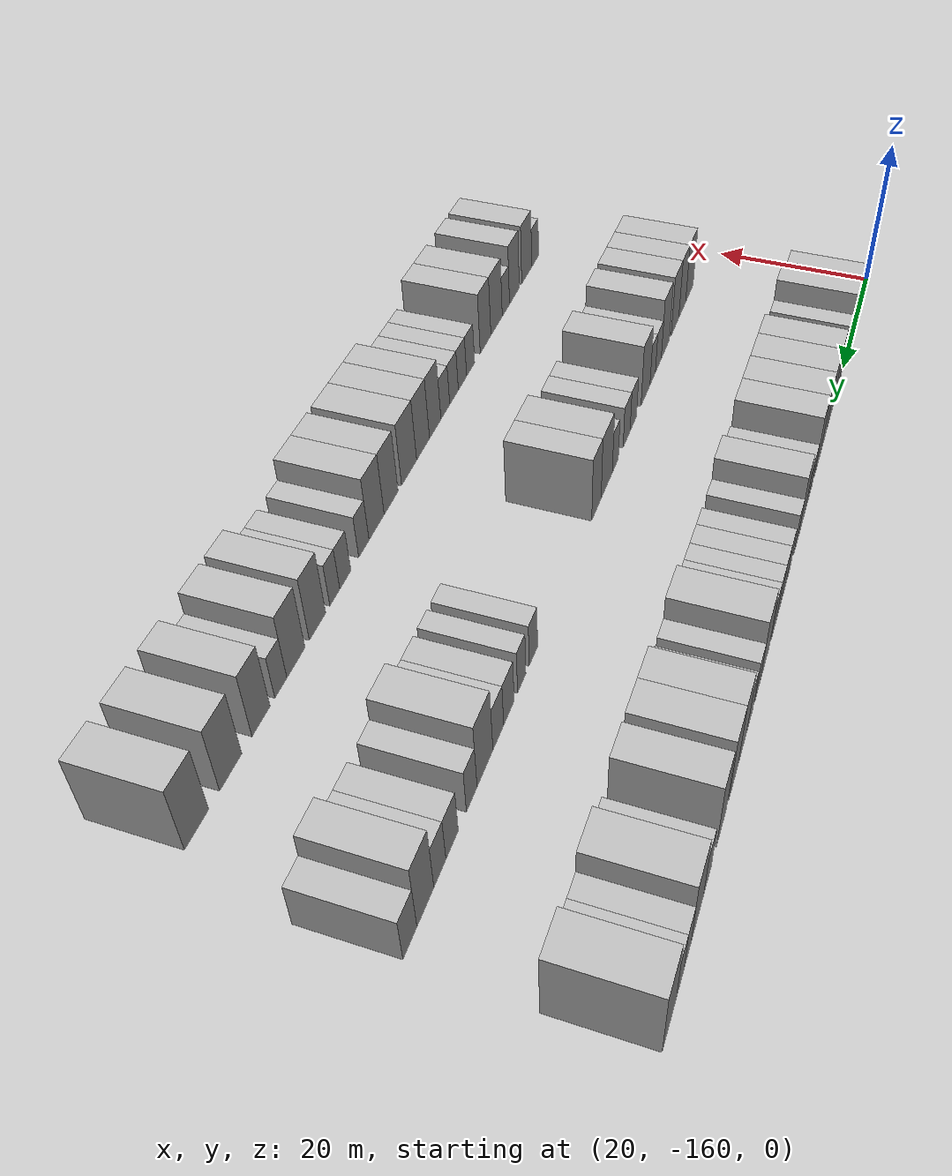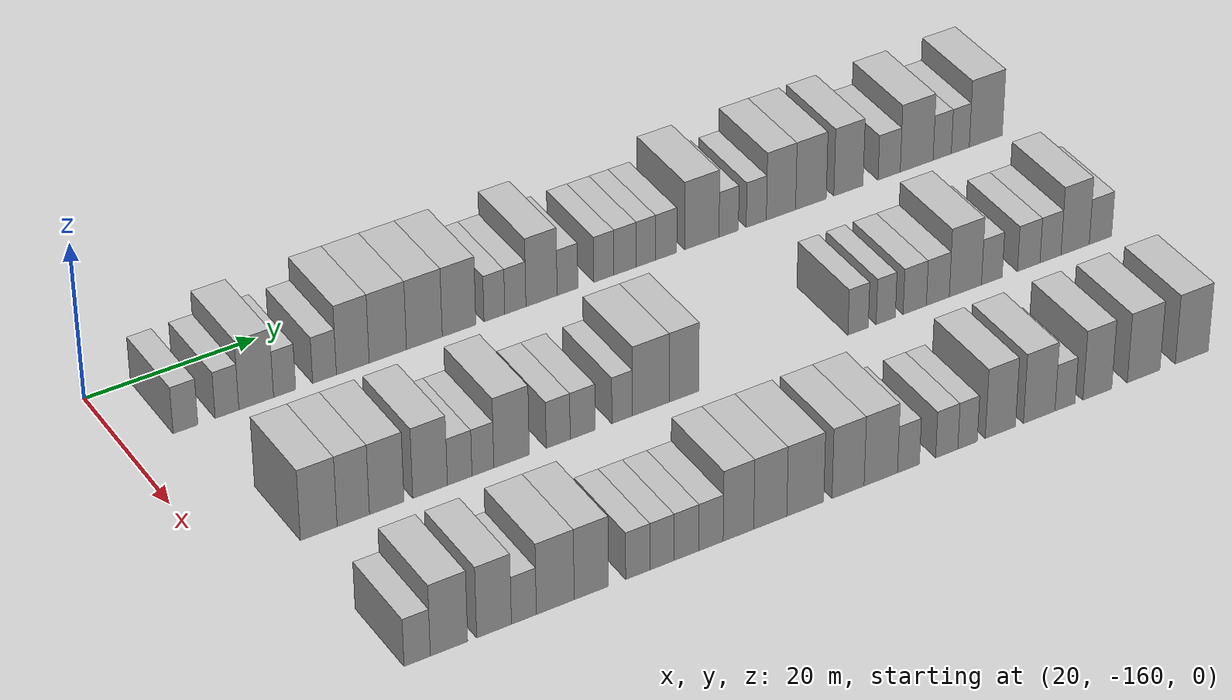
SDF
<sdf version="1.6">
 <world name="default">
  <model name="building_26">
   <static>1</static>
   <pose>25.0000 -153.2342 0 0.000000 0.000000 0.000000</pose>
   <link name="link">
    <pose>0 0 3.00 0 0 0</pose>
    <collision name="collision"><geometry><box><size>10.0000 2.8501 6.0000</size></box></geometry></collision>
    <visual name="visual">
     <cast_shadows>0</cast_shadows>
     <geometry><box><size>10.0000 2.8501 6.0000</size></box></geometry>
     <material>
      <script>
       <uri>model://HANNAS_wall/materials/scripts</uri>
       <uri>model://HANNAS_wall/materials/textures</uri>
       <name>vrc/HANNAS_wall</name>
      </script>
     </material>
    </visual>
   </link>
  </model>
  <model name="building_27">
   <static>1</static>
   <pose>25.0000 -148.4355 0 0.000000 0.000000 0.000000</pose>
   <link name="link">
    <pose>0 0 3.00 0 0 0</pose>
    <collision name="collision"><geometry><box><size>10.0000 2.7472 6.0000</size></box></geometry></collision>
    <visual name="visual">
     <cast_shadows>0</cast_shadows>
     <geometry><box><size>10.0000 2.7472 6.0000</size></box></geometry>
     <material>
      <script>
       <uri>model://HANNAS_wall/materials/scripts</uri>
       <uri>model://HANNAS_wall/materials/textures</uri>
       <name>vrc/HANNAS_wall</name>
      </script>
     </material>
    </visual>
   </link>
  </model>
  <model name="building_28">
   <static>1</static>
   <pose>25.0000 -145.0382 0 0.000000 0.000000 0.000000</pose>
   <link name="link">
    <pose>0 0 4.50 0 0 0</pose>
    <collision name="collision"><geometry><box><size>10.0000 4.0474 9.0000</size></box></geometry></collision>
    <visual name="visual">
     <cast_shadows>0</cast_shadows>
     <geometry><box><size>10.0000 4.0474 9.0000</size></box></geometry>
     <material>
      <script>
       <uri>model://HANNAS_wall/materials/scripts</uri>
       <uri>model://HANNAS_wall/materials/textures</uri>
       <name>vrc/HANNAS_wall</name>
      </script>
     </material>
    </visual>
   </link>
  </model>
  <model name="building_29">
   <static>1</static>
   <pose>25.0000 -141.7156 0 0.000000 0.000000 0.000000</pose>
   <link name="link">
    <pose>0 0 3.00 0 0 0</pose>
    <collision name="collision"><geometry><box><size>10.0000 2.5978 6.0000</size></box></geometry></collision>
    <visual name="visual">
     <cast_shadows>0</cast_shadows>
     <geometry><box><size>10.0000 2.5978 6.0000</size></box></geometry>
     <material>
      <script>
       <uri>model://HANNAS_wall/materials/scripts</uri>
       <uri>model://HANNAS_wall/materials/textures</uri>
       <name>vrc/HANNAS_wall</name>
      </script>
     </material>
    </visual>
   </link>
  </model>
  <model name="building_30">
   <static>1</static>
   <pose>25.0000 -137.0139 0 0.000000 0.000000 0.000000</pose>
   <link name="link">
    <pose>0 0 3.00 0 0 0</pose>
    <collision name="collision"><geometry><box><size>10.0000 2.8056 6.0000</size></box></geometry></collision>
    <visual name="visual">
     <cast_shadows>0</cast_shadows>
     <geometry><box><size>10.0000 2.8056 6.0000</size></box></geometry>
     <material>
      <script>
       <uri>model://HANNAS_wall/materials/scripts</uri>
       <uri>model://HANNAS_wall/materials/textures</uri>
       <name>vrc/HANNAS_wall</name>
      </script>
     </material>
    </visual>
   </link>
  </model>
  <model name="building_31">
   <static>1</static>
   <pose>25.0000 -133.6611 0 0.000000 0.000000 0.000000</pose>
   <link name="link">
    <pose>0 0 4.50 0 0 0</pose>
    <collision name="collision"><geometry><box><size>10.0000 3.8999 9.0000</size></box></geometry></collision>
    <visual name="visual">
     <cast_shadows>0</cast_shadows>
     <geometry><box><size>10.0000 3.8999 9.0000</size></box></geometry>
     <material>
      <script>
       <uri>model://HANNAS_wall/materials/scripts</uri>
       <uri>model://HANNAS_wall/materials/textures</uri>
       <name>vrc/HANNAS_wall</name>
      </script>
     </material>
    </visual>
   </link>
  </model>
  <model name="building_32">
   <static>1</static>
   <pose>25.0000 -129.4743 0 0.000000 0.000000 0.000000</pose>
   <link name="link">
    <pose>0 0 4.50 0 0 0</pose>
    <collision name="collision"><geometry><box><size>10.0000 4.4739 9.0000</size></box></geometry></collision>
    <visual name="visual">
     <cast_shadows>0</cast_shadows>
     <geometry><box><size>10.0000 4.4739 9.0000</size></box></geometry>
     <material>
      <script>
       <uri>model://HANNAS_wall/materials/scripts</uri>
       <uri>model://HANNAS_wall/materials/textures</uri>
       <name>vrc/HANNAS_wall</name>
      </script>
     </material>
    </visual>
   </link>
  </model>
  <model name="building_33">
   <static>1</static>
   <pose>25.0000 -125.0776 0 0.000000 0.000000 0.000000</pose>
   <link name="link">
    <pose>0 0 4.50 0 0 0</pose>
    <collision name="collision"><geometry><box><size>10.0000 4.3195 9.0000</size></box></geometry></collision>
    <visual name="visual">
     <cast_shadows>0</cast_shadows>
     <geometry><box><size>10.0000 4.3195 9.0000</size></box></geometry>
     <material>
      <script>
       <uri>model://HANNAS_wall/materials/scripts</uri>
       <uri>model://HANNAS_wall/materials/textures</uri>
       <name>vrc/HANNAS_wall</name>
      </script>
     </material>
    </visual>
   </link>
  </model>
  <model name="building_34">
   <static>1</static>
   <pose>25.0000 -120.8792 0 0.000000 0.000000 0.000000</pose>
   <link name="link">
    <pose>0 0 4.50 0 0 0</pose>
    <collision name="collision"><geometry><box><size>10.0000 4.0772 9.0000</size></box></geometry></collision>
    <visual name="visual">
     <cast_shadows>0</cast_shadows>
     <geometry><box><size>10.0000 4.0772 9.0000</size></box></geometry>
     <material>
      <script>
       <uri>model://HANNAS_wall/materials/scripts</uri>
       <uri>model://HANNAS_wall/materials/textures</uri>
       <name>vrc/HANNAS_wall</name>
      </script>
     </material>
    </visual>
   </link>
  </model>
  <model name="building_35">
   <static>1</static>
   <pose>25.0000 -116.5650 0 0.000000 0.000000 0.000000</pose>
   <link name="link">
    <pose>0 0 3.00 0 0 0</pose>
    <collision name="collision"><geometry><box><size>10.0000 2.5513 6.0000</size></box></geometry></collision>
    <visual name="visual">
     <cast_shadows>0</cast_shadows>
     <geometry><box><size>10.0000 2.5513 6.0000</size></box></geometry>
     <material>
      <script>
       <uri>model://HANNAS_wall/materials/scripts</uri>
       <uri>model://HANNAS_wall/materials/textures</uri>
       <name>vrc/HANNAS_wall</name>
      </script>
     </material>
    </visual>
   </link>
  </model>
  <model name="building_36">
   <static>1</static>
   <pose>25.0000 -113.9904 0 0.000000 0.000000 0.000000</pose>
   <link name="link">
    <pose>0 0 3.00 0 0 0</pose>
    <collision name="collision"><geometry><box><size>10.0000 2.5978 6.0000</size></box></geometry></collision>
    <visual name="visual">
     <cast_shadows>0</cast_shadows>
     <geometry><box><size>10.0000 2.5978 6.0000</size></box></geometry>
     <material>
      <script>
       <uri>model://HANNAS_wall/materials/scripts</uri>
       <uri>model://HANNAS_wall/materials/textures</uri>
       <name>vrc/HANNAS_wall</name>
      </script>
     </material>
    </visual>
   </link>
  </model>
  <model name="building_37">
   <static>1</static>
   <pose>25.0000 -110.7611 0 0.000000 0.000000 0.000000</pose>
   <link name="link">
    <pose>0 0 4.50 0 0 0</pose>
    <collision name="collision"><geometry><box><size>10.0000 3.8607 9.0000</size></box></geometry></collision>
    <visual name="visual">
     <cast_shadows>0</cast_shadows>
     <geometry><box><size>10.0000 3.8607 9.0000</size></box></geometry>
     <material>
      <script>
       <uri>model://HANNAS_wall/materials/scripts</uri>
       <uri>model://HANNAS_wall/materials/textures</uri>
       <name>vrc/HANNAS_wall</name>
      </script>
     </material>
    </visual>
   </link>
  </model>
  <model name="building_38">
   <static>1</static>
   <pose>25.0000 -107.5421 0 0.000000 0.000000 0.000000</pose>
   <link name="link">
    <pose>0 0 3.00 0 0 0</pose>
    <collision name="collision"><geometry><box><size>10.0000 2.5774 6.0000</size></box></geometry></collision>
    <visual name="visual">
     <cast_shadows>0</cast_shadows>
     <geometry><box><size>10.0000 2.5774 6.0000</size></box></geometry>
     <material>
      <script>
       <uri>model://HANNAS_wall/materials/scripts</uri>
       <uri>model://HANNAS_wall/materials/textures</uri>
       <name>vrc/HANNAS_wall</name>
      </script>
     </material>
    </visual>
   </link>
  </model>
  <model name="building_39">
   <static>1</static>
   <pose>25.0000 -102.9907 0 0.000000 0.000000 0.000000</pose>
   <link name="link">
    <pose>0 0 3.00 0 0 0</pose>
    <collision name="collision"><geometry><box><size>10.0000 2.5255 6.0000</size></box></geometry></collision>
    <visual name="visual">
     <cast_shadows>0</cast_shadows>
     <geometry><box><size>10.0000 2.5255 6.0000</size></box></geometry>
     <material>
      <script>
       <uri>model://HANNAS_wall/materials/scripts</uri>
       <uri>model://HANNAS_wall/materials/textures</uri>
       <name>vrc/HANNAS_wall</name>
      </script>
     </material>
    </visual>
   </link>
  </model>
  <model name="building_40">
   <static>1</static>
   <pose>25.0000 -100.3243 0 0.000000 0.000000 0.000000</pose>
   <link name="link">
    <pose>0 0 3.00 0 0 0</pose>
    <collision name="collision"><geometry><box><size>10.0000 2.8073 6.0000</size></box></geometry></collision>
    <visual name="visual">
     <cast_shadows>0</cast_shadows>
     <geometry><box><size>10.0000 2.8073 6.0000</size></box></geometry>
     <material>
      <script>
       <uri>model://HANNAS_wall/materials/scripts</uri>
       <uri>model://HANNAS_wall/materials/textures</uri>
       <name>vrc/HANNAS_wall</name>
      </script>
     </material>
    </visual>
   </link>
  </model>
  <model name="building_41">
   <static>1</static>
   <pose>25.0000 -97.7084 0 0.000000 0.000000 0.000000</pose>
   <link name="link">
    <pose>0 0 3.00 0 0 0</pose>
    <collision name="collision"><geometry><box><size>10.0000 2.4245 6.0000</size></box></geometry></collision>
    <visual name="visual">
     <cast_shadows>0</cast_shadows>
     <geometry><box><size>10.0000 2.4245 6.0000</size></box></geometry>
     <material>
      <script>
       <uri>model://HANNAS_wall/materials/scripts</uri>
       <uri>model://HANNAS_wall/materials/textures</uri>
       <name>vrc/HANNAS_wall</name>
      </script>
     </material>
    </visual>
   </link>
  </model>
  <model name="building_42">
   <static>1</static>
   <pose>25.0000 -95.1471 0 0.000000 0.000000 0.000000</pose>
   <link name="link">
    <pose>0 0 3.00 0 0 0</pose>
    <collision name="collision"><geometry><box><size>10.0000 2.6981 6.0000</size></box></geometry></collision>
    <visual name="visual">
     <cast_shadows>0</cast_shadows>
     <geometry><box><size>10.0000 2.6981 6.0000</size></box></geometry>
     <material>
      <script>
       <uri>model://HANNAS_wall/materials/scripts</uri>
       <uri>model://HANNAS_wall/materials/textures</uri>
       <name>vrc/HANNAS_wall</name>
      </script>
     </material>
    </visual>
   </link>
  </model>
  <model name="building_43">
   <static>1</static>
   <pose>25.0000 -90.5952 0 0.000000 0.000000 0.000000</pose>
   <link name="link">
    <pose>0 0 4.50 0 0 0</pose>
    <collision name="collision"><geometry><box><size>10.0000 4.4057 9.0000</size></box></geometry></collision>
    <visual name="visual">
     <cast_shadows>0</cast_shadows>
     <geometry><box><size>10.0000 4.4057 9.0000</size></box></geometry>
     <material>
      <script>
       <uri>model://HANNAS_wall/materials/scripts</uri>
       <uri>model://HANNAS_wall/materials/textures</uri>
       <name>vrc/HANNAS_wall</name>
      </script>
     </material>
    </visual>
   </link>
  </model>
  <model name="building_44">
   <static>1</static>
   <pose>25.0000 -87.1401 0 0.000000 0.000000 0.000000</pose>
   <link name="link">
    <pose>0 0 3.00 0 0 0</pose>
    <collision name="collision"><geometry><box><size>10.0000 2.5045 6.0000</size></box></geometry></collision>
    <visual name="visual">
     <cast_shadows>0</cast_shadows>
     <geometry><box><size>10.0000 2.5045 6.0000</size></box></geometry>
     <material>
      <script>
       <uri>model://HANNAS_wall/materials/scripts</uri>
       <uri>model://HANNAS_wall/materials/textures</uri>
       <name>vrc/HANNAS_wall</name>
      </script>
     </material>
    </visual>
   </link>
  </model>
  <model name="building_45">
   <static>1</static>
   <pose>25.0000 -83.5839 0 0.000000 0.000000 0.000000</pose>
   <link name="link">
    <pose>0 0 3.00 0 0 0</pose>
    <collision name="collision"><geometry><box><size>10.0000 2.6078 6.0000</size></box></geometry></collision>
    <visual name="visual">
     <cast_shadows>0</cast_shadows>
     <geometry><box><size>10.0000 2.6078 6.0000</size></box></geometry>
     <material>
      <script>
       <uri>model://HANNAS_wall/materials/scripts</uri>
       <uri>model://HANNAS_wall/materials/textures</uri>
       <name>vrc/HANNAS_wall</name>
      </script>
     </material>
    </visual>
   </link>
  </model>
  <model name="building_46">
   <static>1</static>
   <pose>25.0000 -80.3772 0 0.000000 0.000000 0.000000</pose>
   <link name="link">
    <pose>0 0 4.50 0 0 0</pose>
    <collision name="collision"><geometry><box><size>10.0000 3.8057 9.0000</size></box></geometry></collision>
    <visual name="visual">
     <cast_shadows>0</cast_shadows>
     <geometry><box><size>10.0000 3.8057 9.0000</size></box></geometry>
     <material>
      <script>
       <uri>model://HANNAS_wall/materials/scripts</uri>
       <uri>model://HANNAS_wall/materials/textures</uri>
       <name>vrc/HANNAS_wall</name>
      </script>
     </material>
    </visual>
   </link>
  </model>
  <model name="building_47">
   <static>1</static>
   <pose>25.0000 -76.4669 0 0.000000 0.000000 0.000000</pose>
   <link name="link">
    <pose>0 0 4.50 0 0 0</pose>
    <collision name="collision"><geometry><box><size>10.0000 4.0148 9.0000</size></box></geometry></collision>
    <visual name="visual">
     <cast_shadows>0</cast_shadows>
     <geometry><box><size>10.0000 4.0148 9.0000</size></box></geometry>
     <material>
      <script>
       <uri>model://HANNAS_wall/materials/scripts</uri>
       <uri>model://HANNAS_wall/materials/textures</uri>
       <name>vrc/HANNAS_wall</name>
      </script>
     </material>
    </visual>
   </link>
  </model>
  <model name="building_48">
   <static>1</static>
   <pose>25.0000 -71.5309 0 0.000000 0.000000 0.000000</pose>
   <link name="link">
    <pose>0 0 4.50 0 0 0</pose>
    <collision name="collision"><geometry><box><size>10.0000 3.8572 9.0000</size></box></geometry></collision>
    <visual name="visual">
     <cast_shadows>0</cast_shadows>
     <geometry><box><size>10.0000 3.8572 9.0000</size></box></geometry>
     <material>
      <script>
       <uri>model://HANNAS_wall/materials/scripts</uri>
       <uri>model://HANNAS_wall/materials/textures</uri>
       <name>vrc/HANNAS_wall</name>
      </script>
     </material>
    </visual>
   </link>
  </model>
  <model name="building_49">
   <static>1</static>
   <pose>25.0000 -66.1277 0 0.000000 0.000000 0.000000</pose>
   <link name="link">
    <pose>0 0 3.00 0 0 0</pose>
    <collision name="collision"><geometry><box><size>10.0000 2.9492 6.0000</size></box></geometry></collision>
    <visual name="visual">
     <cast_shadows>0</cast_shadows>
     <geometry><box><size>10.0000 2.9492 6.0000</size></box></geometry>
     <material>
      <script>
       <uri>model://HANNAS_wall/materials/scripts</uri>
       <uri>model://HANNAS_wall/materials/textures</uri>
       <name>vrc/HANNAS_wall</name>
      </script>
     </material>
    </visual>
   </link>
  </model>
  <model name="building_50">
   <static>1</static>
   <pose>25.0000 -62.4481 0 0.000000 0.000000 0.000000</pose>
   <link name="link">
    <pose>0 0 4.50 0 0 0</pose>
    <collision name="collision"><geometry><box><size>10.0000 4.4099 9.0000</size></box></geometry></collision>
    <visual name="visual">
     <cast_shadows>0</cast_shadows>
     <geometry><box><size>10.0000 4.4099 9.0000</size></box></geometry>
     <material>
      <script>
       <uri>model://HANNAS_wall/materials/scripts</uri>
       <uri>model://HANNAS_wall/materials/textures</uri>
       <name>vrc/HANNAS_wall</name>
      </script>
     </material>
    </visual>
   </link>
  </model>
  <model name="building_51">
   <static>1</static>
   <pose>25.0000 -59.0148 0 0.000000 0.000000 0.000000</pose>
   <link name="link">
    <pose>0 0 3.00 0 0 0</pose>
    <collision name="collision"><geometry><box><size>10.0000 2.4567 6.0000</size></box></geometry></collision>
    <visual name="visual">
     <cast_shadows>0</cast_shadows>
     <geometry><box><size>10.0000 2.4567 6.0000</size></box></geometry>
     <material>
      <script>
       <uri>model://HANNAS_wall/materials/scripts</uri>
       <uri>model://HANNAS_wall/materials/textures</uri>
       <name>vrc/HANNAS_wall</name>
      </script>
     </material>
    </visual>
   </link>
  </model>
  <model name="building_52">
   <static>1</static>
   <pose>25.0000 -56.5698 0 0.000000 0.000000 0.000000</pose>
   <link name="link">
    <pose>0 0 3.00 0 0 0</pose>
    <collision name="collision"><geometry><box><size>10.0000 2.4333 6.0000</size></box></geometry></collision>
    <visual name="visual">
     <cast_shadows>0</cast_shadows>
     <geometry><box><size>10.0000 2.4333 6.0000</size></box></geometry>
     <material>
      <script>
       <uri>model://HANNAS_wall/materials/scripts</uri>
       <uri>model://HANNAS_wall/materials/textures</uri>
       <name>vrc/HANNAS_wall</name>
      </script>
     </material>
    </visual>
   </link>
  </model>
  <model name="building_53">
   <static>1</static>
   <pose>25.0000 -53.1137 0 0.000000 0.000000 0.000000</pose>
   <link name="link">
    <pose>0 0 4.50 0 0 0</pose>
    <collision name="collision"><geometry><box><size>10.0000 4.4789 9.0000</size></box></geometry></collision>
    <visual name="visual">
     <cast_shadows>0</cast_shadows>
     <geometry><box><size>10.0000 4.4789 9.0000</size></box></geometry>
     <material>
      <script>
       <uri>model://HANNAS_wall/materials/scripts</uri>
       <uri>model://HANNAS_wall/materials/textures</uri>
       <name>vrc/HANNAS_wall</name>
      </script>
     </material>
    </visual>
   </link>
  </model>
  <model name="building_149">
   <static>1</static>
   <pose>47.0000 -149.3163 0 0.000000 0.000000 0.000000</pose>
   <link name="link">
    <pose>0 0 4.50 0 0 0</pose>
    <collision name="collision"><geometry><box><size>10.0000 4.1596 9.0000</size></box></geometry></collision>
    <visual name="visual">
     <cast_shadows>0</cast_shadows>
     <geometry><box><size>10.0000 4.1596 9.0000</size></box></geometry>
     <material>
      <script>
       <uri>model://HANNAS_wall/materials/scripts</uri>
       <uri>model://HANNAS_wall/materials/textures</uri>
       <name>vrc/HANNAS_wall</name>
      </script>
     </material>
    </visual>
   </link>
  </model>
  <model name="building_150">
   <static>1</static>
   <pose>47.0000 -145.3933 0 0.000000 0.000000 0.000000</pose>
   <link name="link">
    <pose>0 0 4.50 0 0 0</pose>
    <collision name="collision"><geometry><box><size>10.0000 3.6864 9.0000</size></box></geometry></collision>
    <visual name="visual">
     <cast_shadows>0</cast_shadows>
     <geometry><box><size>10.0000 3.6864 9.0000</size></box></geometry>
     <material>
      <script>
       <uri>model://HANNAS_wall/materials/scripts</uri>
       <uri>model://HANNAS_wall/materials/textures</uri>
       <name>vrc/HANNAS_wall</name>
      </script>
     </material>
    </visual>
   </link>
  </model>
  <model name="building_151">
   <static>1</static>
   <pose>47.0000 -141.5632 0 0.000000 0.000000 0.000000</pose>
   <link name="link">
    <pose>0 0 4.50 0 0 0</pose>
    <collision name="collision"><geometry><box><size>10.0000 3.9739 9.0000</size></box></geometry></collision>
    <visual name="visual">
     <cast_shadows>0</cast_shadows>
     <geometry><box><size>10.0000 3.9739 9.0000</size></box></geometry>
     <material>
      <script>
       <uri>model://HANNAS_wall/materials/scripts</uri>
       <uri>model://HANNAS_wall/materials/textures</uri>
       <name>vrc/HANNAS_wall</name>
      </script>
     </material>
    </visual>
   </link>
  </model>
  <model name="building_152">
   <static>1</static>
   <pose>47.0000 -136.5669 0 0.000000 0.000000 0.000000</pose>
   <link name="link">
    <pose>0 0 4.50 0 0 0</pose>
    <collision name="collision"><geometry><box><size>10.0000 4.0186 9.0000</size></box></geometry></collision>
    <visual name="visual">
     <cast_shadows>0</cast_shadows>
     <geometry><box><size>10.0000 4.0186 9.0000</size></box></geometry>
     <material>
      <script>
       <uri>model://HANNAS_wall/materials/scripts</uri>
       <uri>model://HANNAS_wall/materials/textures</uri>
       <name>vrc/HANNAS_wall</name>
      </script>
     </material>
    </visual>
   </link>
  </model>
  <model name="building_153">
   <static>1</static>
   <pose>47.0000 -133.1243 0 0.000000 0.000000 0.000000</pose>
   <link name="link">
    <pose>0 0 3.00 0 0 0</pose>
    <collision name="collision"><geometry><box><size>10.0000 2.8666 6.0000</size></box></geometry></collision>
    <visual name="visual">
     <cast_shadows>0</cast_shadows>
     <geometry><box><size>10.0000 2.8666 6.0000</size></box></geometry>
     <material>
      <script>
       <uri>model://HANNAS_wall/materials/scripts</uri>
       <uri>model://HANNAS_wall/materials/textures</uri>
       <name>vrc/HANNAS_wall</name>
      </script>
     </material>
    </visual>
   </link>
  </model>
  <model name="building_154">
   <static>1</static>
   <pose>47.0000 -130.4106 0 0.000000 0.000000 0.000000</pose>
   <link name="link">
    <pose>0 0 3.00 0 0 0</pose>
    <collision name="collision"><geometry><box><size>10.0000 2.5608 6.0000</size></box></geometry></collision>
    <visual name="visual">
     <cast_shadows>0</cast_shadows>
     <geometry><box><size>10.0000 2.5608 6.0000</size></box></geometry>
     <material>
      <script>
       <uri>model://HANNAS_wall/materials/scripts</uri>
       <uri>model://HANNAS_wall/materials/textures</uri>
       <name>vrc/HANNAS_wall</name>
      </script>
     </material>
    </visual>
   </link>
  </model>
  <model name="building_155">
   <static>1</static>
   <pose>47.0000 -127.0421 0 0.000000 0.000000 0.000000</pose>
   <link name="link">
    <pose>0 0 4.50 0 0 0</pose>
    <collision name="collision"><geometry><box><size>10.0000 4.1762 9.0000</size></box></geometry></collision>
    <visual name="visual">
     <cast_shadows>0</cast_shadows>
     <geometry><box><size>10.0000 4.1762 9.0000</size></box></geometry>
     <material>
      <script>
       <uri>model://HANNAS_wall/materials/scripts</uri>
       <uri>model://HANNAS_wall/materials/textures</uri>
       <name>vrc/HANNAS_wall</name>
      </script>
     </material>
    </visual>
   </link>
  </model>
  <model name="building_156">
   <static>1</static>
   <pose>47.0000 -121.5261 0 0.000000 0.000000 0.000000</pose>
   <link name="link">
    <pose>0 0 3.00 0 0 0</pose>
    <collision name="collision"><geometry><box><size>10.0000 2.8559 6.0000</size></box></geometry></collision>
    <visual name="visual">
     <cast_shadows>0</cast_shadows>
     <geometry><box><size>10.0000 2.8559 6.0000</size></box></geometry>
     <material>
      <script>
       <uri>model://HANNAS_wall/materials/scripts</uri>
       <uri>model://HANNAS_wall/materials/textures</uri>
       <name>vrc/HANNAS_wall</name>
      </script>
     </material>
    </visual>
   </link>
  </model>
  <model name="building_157">
   <static>1</static>
   <pose>47.0000 -118.5994 0 0.000000 0.000000 0.000000</pose>
   <link name="link">
    <pose>0 0 3.00 0 0 0</pose>
    <collision name="collision"><geometry><box><size>10.0000 2.9976 6.0000</size></box></geometry></collision>
    <visual name="visual">
     <cast_shadows>0</cast_shadows>
     <geometry><box><size>10.0000 2.9976 6.0000</size></box></geometry>
     <material>
      <script>
       <uri>model://HANNAS_wall/materials/scripts</uri>
       <uri>model://HANNAS_wall/materials/textures</uri>
       <name>vrc/HANNAS_wall</name>
      </script>
     </material>
    </visual>
   </link>
  </model>
  <model name="building_158">
   <static>1</static>
   <pose>47.0000 -113.8533 0 0.000000 0.000000 0.000000</pose>
   <link name="link">
    <pose>0 0 3.00 0 0 0</pose>
    <collision name="collision"><geometry><box><size>10.0000 2.4947 6.0000</size></box></geometry></collision>
    <visual name="visual">
     <cast_shadows>0</cast_shadows>
     <geometry><box><size>10.0000 2.4947 6.0000</size></box></geometry>
     <material>
      <script>
       <uri>model://HANNAS_wall/materials/scripts</uri>
       <uri>model://HANNAS_wall/materials/textures</uri>
       <name>vrc/HANNAS_wall</name>
      </script>
     </material>
    </visual>
   </link>
  </model>
  <model name="building_159">
   <static>1</static>
   <pose>47.0000 -110.3857 0 0.000000 0.000000 0.000000</pose>
   <link name="link">
    <pose>0 0 4.50 0 0 0</pose>
    <collision name="collision"><geometry><box><size>10.0000 4.4405 9.0000</size></box></geometry></collision>
    <visual name="visual">
     <cast_shadows>0</cast_shadows>
     <geometry><box><size>10.0000 4.4405 9.0000</size></box></geometry>
     <material>
      <script>
       <uri>model://HANNAS_wall/materials/scripts</uri>
       <uri>model://HANNAS_wall/materials/textures</uri>
       <name>vrc/HANNAS_wall</name>
      </script>
     </material>
    </visual>
   </link>
  </model>
  <model name="building_160">
   <static>1</static>
   <pose>47.0000 -106.3601 0 0.000000 0.000000 0.000000</pose>
   <link name="link">
    <pose>0 0 4.50 0 0 0</pose>
    <collision name="collision"><geometry><box><size>10.0000 3.6106 9.0000</size></box></geometry></collision>
    <visual name="visual">
     <cast_shadows>0</cast_shadows>
     <geometry><box><size>10.0000 3.6106 9.0000</size></box></geometry>
     <material>
      <script>
       <uri>model://HANNAS_wall/materials/scripts</uri>
       <uri>model://HANNAS_wall/materials/textures</uri>
       <name>vrc/HANNAS_wall</name>
      </script>
     </material>
    </visual>
   </link>
  </model>
  <model name="building_161">
   <static>1</static>
   <pose>47.0000 -84.6815 0 0.000000 0.000000 0.000000</pose>
   <link name="link">
    <pose>0 0 3.00 0 0 0</pose>
    <collision name="collision"><geometry><box><size>10.0000 2.5822 6.0000</size></box></geometry></collision>
    <visual name="visual">
     <cast_shadows>0</cast_shadows>
     <geometry><box><size>10.0000 2.5822 6.0000</size></box></geometry>
     <material>
      <script>
       <uri>model://HANNAS_wall/materials/scripts</uri>
       <uri>model://HANNAS_wall/materials/textures</uri>
       <name>vrc/HANNAS_wall</name>
      </script>
     </material>
    </visual>
   </link>
  </model>
  <model name="building_162">
   <static>1</static>
   <pose>47.0000 -81.1664 0 0.000000 0.000000 0.000000</pose>
   <link name="link">
    <pose>0 0 3.00 0 0 0</pose>
    <collision name="collision"><geometry><box><size>10.0000 2.4480 6.0000</size></box></geometry></collision>
    <visual name="visual">
     <cast_shadows>0</cast_shadows>
     <geometry><box><size>10.0000 2.4480 6.0000</size></box></geometry>
     <material>
      <script>
       <uri>model://HANNAS_wall/materials/scripts</uri>
       <uri>model://HANNAS_wall/materials/textures</uri>
       <name>vrc/HANNAS_wall</name>
      </script>
     </material>
    </visual>
   </link>
  </model>
  <model name="building_163">
   <static>1</static>
   <pose>47.0000 -77.4501 0 0.000000 0.000000 0.000000</pose>
   <link name="link">
    <pose>0 0 3.00 0 0 0</pose>
    <collision name="collision"><geometry><box><size>10.0000 2.9846 6.0000</size></box></geometry></collision>
    <visual name="visual">
     <cast_shadows>0</cast_shadows>
     <geometry><box><size>10.0000 2.9846 6.0000</size></box></geometry>
     <material>
      <script>
       <uri>model://HANNAS_wall/materials/scripts</uri>
       <uri>model://HANNAS_wall/materials/textures</uri>
       <name>vrc/HANNAS_wall</name>
      </script>
     </material>
    </visual>
   </link>
  </model>
  <model name="building_164">
   <static>1</static>
   <pose>47.0000 -74.4788 0 0.000000 0.000000 0.000000</pose>
   <link name="link">
    <pose>0 0 3.00 0 0 0</pose>
    <collision name="collision"><geometry><box><size>10.0000 2.9580 6.0000</size></box></geometry></collision>
    <visual name="visual">
     <cast_shadows>0</cast_shadows>
     <geometry><box><size>10.0000 2.9580 6.0000</size></box></geometry>
     <material>
      <script>
       <uri>model://HANNAS_wall/materials/scripts</uri>
       <uri>model://HANNAS_wall/materials/textures</uri>
       <name>vrc/HANNAS_wall</name>
      </script>
     </material>
    </visual>
   </link>
  </model>
  <model name="building_165">
   <static>1</static>
   <pose>47.0000 -70.9100 0 0.000000 0.000000 0.000000</pose>
   <link name="link">
    <pose>0 0 4.50 0 0 0</pose>
    <collision name="collision"><geometry><box><size>10.0000 4.1795 9.0000</size></box></geometry></collision>
    <visual name="visual">
     <cast_shadows>0</cast_shadows>
     <geometry><box><size>10.0000 4.1795 9.0000</size></box></geometry>
     <material>
      <script>
       <uri>model://HANNAS_wall/materials/scripts</uri>
       <uri>model://HANNAS_wall/materials/textures</uri>
       <name>vrc/HANNAS_wall</name>
      </script>
     </material>
    </visual>
   </link>
  </model>
  <model name="building_166">
   <static>1</static>
   <pose>47.0000 -67.4647 0 0.000000 0.000000 0.000000</pose>
   <link name="link">
    <pose>0 0 3.00 0 0 0</pose>
    <collision name="collision"><geometry><box><size>10.0000 2.7112 6.0000</size></box></geometry></collision>
    <visual name="visual">
     <cast_shadows>0</cast_shadows>
     <geometry><box><size>10.0000 2.7112 6.0000</size></box></geometry>
     <material>
      <script>
       <uri>model://HANNAS_wall/materials/scripts</uri>
       <uri>model://HANNAS_wall/materials/textures</uri>
       <name>vrc/HANNAS_wall</name>
      </script>
     </material>
    </visual>
   </link>
  </model>
  <model name="building_167">
   <static>1</static>
   <pose>47.0000 -62.6295 0 0.000000 0.000000 0.000000</pose>
   <link name="link">
    <pose>0 0 3.00 0 0 0</pose>
    <collision name="collision"><geometry><box><size>10.0000 2.9592 6.0000</size></box></geometry></collision>
    <visual name="visual">
     <cast_shadows>0</cast_shadows>
     <geometry><box><size>10.0000 2.9592 6.0000</size></box></geometry>
     <material>
      <script>
       <uri>model://HANNAS_wall/materials/scripts</uri>
       <uri>model://HANNAS_wall/materials/textures</uri>
       <name>vrc/HANNAS_wall</name>
      </script>
     </material>
    </visual>
   </link>
  </model>
  <model name="building_168">
   <static>1</static>
   <pose>47.0000 -59.7577 0 0.000000 0.000000 0.000000</pose>
   <link name="link">
    <pose>0 0 3.00 0 0 0</pose>
    <collision name="collision"><geometry><box><size>10.0000 2.7844 6.0000</size></box></geometry></collision>
    <visual name="visual">
     <cast_shadows>0</cast_shadows>
     <geometry><box><size>10.0000 2.7844 6.0000</size></box></geometry>
     <material>
      <script>
       <uri>model://HANNAS_wall/materials/scripts</uri>
       <uri>model://HANNAS_wall/materials/textures</uri>
       <name>vrc/HANNAS_wall</name>
      </script>
     </material>
    </visual>
   </link>
  </model>
  <model name="building_169">
   <static>1</static>
   <pose>47.0000 -56.4843 0 0.000000 0.000000 0.000000</pose>
   <link name="link">
    <pose>0 0 4.50 0 0 0</pose>
    <collision name="collision"><geometry><box><size>10.0000 3.7623 9.0000</size></box></geometry></collision>
    <visual name="visual">
     <cast_shadows>0</cast_shadows>
     <geometry><box><size>10.0000 3.7623 9.0000</size></box></geometry>
     <material>
      <script>
       <uri>model://HANNAS_wall/materials/scripts</uri>
       <uri>model://HANNAS_wall/materials/textures</uri>
       <name>vrc/HANNAS_wall</name>
      </script>
     </material>
    </visual>
   </link>
  </model>
  <model name="building_170">
   <static>1</static>
   <pose>47.0000 -53.1110 0 0.000000 0.000000 0.000000</pose>
   <link name="link">
    <pose>0 0 3.00 0 0 0</pose>
    <collision name="collision"><geometry><box><size>10.0000 2.9843 6.0000</size></box></geometry></collision>
    <visual name="visual">
     <cast_shadows>0</cast_shadows>
     <geometry><box><size>10.0000 2.9843 6.0000</size></box></geometry>
     <material>
      <script>
       <uri>model://HANNAS_wall/materials/scripts</uri>
       <uri>model://HANNAS_wall/materials/textures</uri>
       <name>vrc/HANNAS_wall</name>
      </script>
     </material>
    </visual>
   </link>
  </model>
  <model name="building_270">
   <static>1</static>
   <pose>69.0000 -150.1726 0 0.000000 0.000000 0.000000</pose>
   <link name="link">
    <pose>0 0 3.00 0 0 0</pose>
    <collision name="collision"><geometry><box><size>10.0000 2.9131 6.0000</size></box></geometry></collision>
    <visual name="visual">
     <cast_shadows>0</cast_shadows>
     <geometry><box><size>10.0000 2.9131 6.0000</size></box></geometry>
     <material>
      <script>
       <uri>model://HANNAS_wall/materials/scripts</uri>
       <uri>model://HANNAS_wall/materials/textures</uri>
       <name>vrc/HANNAS_wall</name>
      </script>
     </material>
    </visual>
   </link>
  </model>
  <model name="building_271">
   <static>1</static>
   <pose>69.0000 -146.6375 0 0.000000 0.000000 0.000000</pose>
   <link name="link">
    <pose>0 0 4.50 0 0 0</pose>
    <collision name="collision"><geometry><box><size>10.0000 4.1572 9.0000</size></box></geometry></collision>
    <visual name="visual">
     <cast_shadows>0</cast_shadows>
     <geometry><box><size>10.0000 4.1572 9.0000</size></box></geometry>
     <material>
      <script>
       <uri>model://HANNAS_wall/materials/scripts</uri>
       <uri>model://HANNAS_wall/materials/textures</uri>
       <name>vrc/HANNAS_wall</name>
      </script>
     </material>
    </visual>
   </link>
  </model>
  <model name="building_272">
   <static>1</static>
   <pose>69.0000 -141.6057 0 0.000000 0.000000 0.000000</pose>
   <link name="link">
    <pose>0 0 4.50 0 0 0</pose>
    <collision name="collision"><geometry><box><size>10.0000 3.9062 9.0000</size></box></geometry></collision>
    <visual name="visual">
     <cast_shadows>0</cast_shadows>
     <geometry><box><size>10.0000 3.9062 9.0000</size></box></geometry>
     <material>
      <script>
       <uri>model://HANNAS_wall/materials/scripts</uri>
       <uri>model://HANNAS_wall/materials/textures</uri>
       <name>vrc/HANNAS_wall</name>
      </script>
     </material>
    </visual>
   </link>
  </model>
  <model name="building_273">
   <static>1</static>
   <pose>69.0000 -138.2430 0 0.000000 0.000000 0.000000</pose>
   <link name="link">
    <pose>0 0 3.00 0 0 0</pose>
    <collision name="collision"><geometry><box><size>10.0000 2.8191 6.0000</size></box></geometry></collision>
    <visual name="visual">
     <cast_shadows>0</cast_shadows>
     <geometry><box><size>10.0000 2.8191 6.0000</size></box></geometry>
     <material>
      <script>
       <uri>model://HANNAS_wall/materials/scripts</uri>
       <uri>model://HANNAS_wall/materials/textures</uri>
       <name>vrc/HANNAS_wall</name>
      </script>
     </material>
    </visual>
   </link>
  </model>
  <model name="building_274">
   <static>1</static>
   <pose>69.0000 -134.6802 0 0.000000 0.000000 0.000000</pose>
   <link name="link">
    <pose>0 0 4.50 0 0 0</pose>
    <collision name="collision"><geometry><box><size>10.0000 4.3065 9.0000</size></box></geometry></collision>
    <visual name="visual">
     <cast_shadows>0</cast_shadows>
     <geometry><box><size>10.0000 4.3065 9.0000</size></box></geometry>
     <material>
      <script>
       <uri>model://HANNAS_wall/materials/scripts</uri>
       <uri>model://HANNAS_wall/materials/textures</uri>
       <name>vrc/HANNAS_wall</name>
      </script>
     </material>
    </visual>
   </link>
  </model>
  <model name="building_275">
   <static>1</static>
   <pose>69.0000 -130.5712 0 0.000000 0.000000 0.000000</pose>
   <link name="link">
    <pose>0 0 4.50 0 0 0</pose>
    <collision name="collision"><geometry><box><size>10.0000 3.9115 9.0000</size></box></geometry></collision>
    <visual name="visual">
     <cast_shadows>0</cast_shadows>
     <geometry><box><size>10.0000 3.9115 9.0000</size></box></geometry>
     <material>
      <script>
       <uri>model://HANNAS_wall/materials/scripts</uri>
       <uri>model://HANNAS_wall/materials/textures</uri>
       <name>vrc/HANNAS_wall</name>
      </script>
     </material>
    </visual>
   </link>
  </model>
  <model name="building_276">
   <static>1</static>
   <pose>69.0000 -125.2113 0 0.000000 0.000000 0.000000</pose>
   <link name="link">
    <pose>0 0 3.00 0 0 0</pose>
    <collision name="collision"><geometry><box><size>10.0000 2.8084 6.0000</size></box></geometry></collision>
    <visual name="visual">
     <cast_shadows>0</cast_shadows>
     <geometry><box><size>10.0000 2.8084 6.0000</size></box></geometry>
     <material>
      <script>
       <uri>model://HANNAS_wall/materials/scripts</uri>
       <uri>model://HANNAS_wall/materials/textures</uri>
       <name>vrc/HANNAS_wall</name>
      </script>
     </material>
    </visual>
   </link>
  </model>
  <model name="building_277">
   <static>1</static>
   <pose>69.0000 -122.3966 0 0.000000 0.000000 0.000000</pose>
   <link name="link">
    <pose>0 0 3.00 0 0 0</pose>
    <collision name="collision"><geometry><box><size>10.0000 2.8209 6.0000</size></box></geometry></collision>
    <visual name="visual">
     <cast_shadows>0</cast_shadows>
     <geometry><box><size>10.0000 2.8209 6.0000</size></box></geometry>
     <material>
      <script>
       <uri>model://HANNAS_wall/materials/scripts</uri>
       <uri>model://HANNAS_wall/materials/textures</uri>
       <name>vrc/HANNAS_wall</name>
      </script>
     </material>
    </visual>
   </link>
  </model>
  <model name="building_278">
   <static>1</static>
   <pose>69.0000 -119.5484 0 0.000000 0.000000 0.000000</pose>
   <link name="link">
    <pose>0 0 3.00 0 0 0</pose>
    <collision name="collision"><geometry><box><size>10.0000 2.8755 6.0000</size></box></geometry></collision>
    <visual name="visual">
     <cast_shadows>0</cast_shadows>
     <geometry><box><size>10.0000 2.8755 6.0000</size></box></geometry>
     <material>
      <script>
       <uri>model://HANNAS_wall/materials/scripts</uri>
       <uri>model://HANNAS_wall/materials/textures</uri>
       <name>vrc/HANNAS_wall</name>
      </script>
     </material>
    </visual>
   </link>
  </model>
  <model name="building_279">
   <static>1</static>
   <pose>69.0000 -116.6771 0 0.000000 0.000000 0.000000</pose>
   <link name="link">
    <pose>0 0 3.00 0 0 0</pose>
    <collision name="collision"><geometry><box><size>10.0000 2.8670 6.0000</size></box></geometry></collision>
    <visual name="visual">
     <cast_shadows>0</cast_shadows>
     <geometry><box><size>10.0000 2.8670 6.0000</size></box></geometry>
     <material>
      <script>
       <uri>model://HANNAS_wall/materials/scripts</uri>
       <uri>model://HANNAS_wall/materials/textures</uri>
       <name>vrc/HANNAS_wall</name>
      </script>
     </material>
    </visual>
   </link>
  </model>
  <model name="building_280">
   <static>1</static>
   <pose>69.0000 -113.4401 0 0.000000 0.000000 0.000000</pose>
   <link name="link">
    <pose>0 0 4.50 0 0 0</pose>
    <collision name="collision"><geometry><box><size>10.0000 3.6070 9.0000</size></box></geometry></collision>
    <visual name="visual">
     <cast_shadows>0</cast_shadows>
     <geometry><box><size>10.0000 3.6070 9.0000</size></box></geometry>
     <material>
      <script>
       <uri>model://HANNAS_wall/materials/scripts</uri>
       <uri>model://HANNAS_wall/materials/textures</uri>
       <name>vrc/HANNAS_wall</name>
      </script>
     </material>
    </visual>
   </link>
  </model>
  <model name="building_281">
   <static>1</static>
   <pose>69.0000 -109.6687 0 0.000000 0.000000 0.000000</pose>
   <link name="link">
    <pose>0 0 4.50 0 0 0</pose>
    <collision name="collision"><geometry><box><size>10.0000 3.9358 9.0000</size></box></geometry></collision>
    <visual name="visual">
     <cast_shadows>0</cast_shadows>
     <geometry><box><size>10.0000 3.9358 9.0000</size></box></geometry>
     <material>
      <script>
       <uri>model://HANNAS_wall/materials/scripts</uri>
       <uri>model://HANNAS_wall/materials/textures</uri>
       <name>vrc/HANNAS_wall</name>
      </script>
     </material>
    </visual>
   </link>
  </model>
  <model name="building_282">
   <static>1</static>
   <pose>69.0000 -105.4836 0 0.000000 0.000000 0.000000</pose>
   <link name="link">
    <pose>0 0 4.50 0 0 0</pose>
    <collision name="collision"><geometry><box><size>10.0000 4.4343 9.0000</size></box></geometry></collision>
    <visual name="visual">
     <cast_shadows>0</cast_shadows>
     <geometry><box><size>10.0000 4.4343 9.0000</size></box></geometry>
     <material>
      <script>
       <uri>model://HANNAS_wall/materials/scripts</uri>
       <uri>model://HANNAS_wall/materials/textures</uri>
       <name>vrc/HANNAS_wall</name>
      </script>
     </material>
    </visual>
   </link>
  </model>
  <model name="building_283">
   <static>1</static>
   <pose>69.0000 -100.3244 0 0.000000 0.000000 0.000000</pose>
   <link name="link">
    <pose>0 0 4.50 0 0 0</pose>
    <collision name="collision"><geometry><box><size>10.0000 3.8842 9.0000</size></box></geometry></collision>
    <visual name="visual">
     <cast_shadows>0</cast_shadows>
     <geometry><box><size>10.0000 3.8842 9.0000</size></box></geometry>
     <material>
      <script>
       <uri>model://HANNAS_wall/materials/scripts</uri>
       <uri>model://HANNAS_wall/materials/textures</uri>
       <name>vrc/HANNAS_wall</name>
      </script>
     </material>
    </visual>
   </link>
  </model>
  <model name="building_284">
   <static>1</static>
   <pose>69.0000 -96.3461 0 0.000000 0.000000 0.000000</pose>
   <link name="link">
    <pose>0 0 4.50 0 0 0</pose>
    <collision name="collision"><geometry><box><size>10.0000 4.0723 9.0000</size></box></geometry></collision>
    <visual name="visual">
     <cast_shadows>0</cast_shadows>
     <geometry><box><size>10.0000 4.0723 9.0000</size></box></geometry>
     <material>
      <script>
       <uri>model://HANNAS_wall/materials/scripts</uri>
       <uri>model://HANNAS_wall/materials/textures</uri>
       <name>vrc/HANNAS_wall</name>
      </script>
     </material>
    </visual>
   </link>
  </model>
  <model name="building_285">
   <static>1</static>
   <pose>69.0000 -92.9620 0 0.000000 0.000000 0.000000</pose>
   <link name="link">
    <pose>0 0 3.00 0 0 0</pose>
    <collision name="collision"><geometry><box><size>10.0000 2.6960 6.0000</size></box></geometry></collision>
    <visual name="visual">
     <cast_shadows>0</cast_shadows>
     <geometry><box><size>10.0000 2.6960 6.0000</size></box></geometry>
     <material>
      <script>
       <uri>model://HANNAS_wall/materials/scripts</uri>
       <uri>model://HANNAS_wall/materials/textures</uri>
       <name>vrc/HANNAS_wall</name>
      </script>
     </material>
    </visual>
   </link>
  </model>
  <model name="building_286">
   <static>1</static>
   <pose>69.0000 -88.2417 0 0.000000 0.000000 0.000000</pose>
   <link name="link">
    <pose>0 0 3.00 0 0 0</pose>
    <collision name="collision"><geometry><box><size>10.0000 2.7446 6.0000</size></box></geometry></collision>
    <visual name="visual">
     <cast_shadows>0</cast_shadows>
     <geometry><box><size>10.0000 2.7446 6.0000</size></box></geometry>
     <material>
      <script>
       <uri>model://HANNAS_wall/materials/scripts</uri>
       <uri>model://HANNAS_wall/materials/textures</uri>
       <name>vrc/HANNAS_wall</name>
      </script>
     </material>
    </visual>
   </link>
  </model>
  <model name="building_287">
   <static>1</static>
   <pose>69.0000 -85.6628 0 0.000000 0.000000 0.000000</pose>
   <link name="link">
    <pose>0 0 3.00 0 0 0</pose>
    <collision name="collision"><geometry><box><size>10.0000 2.4131 6.0000</size></box></geometry></collision>
    <visual name="visual">
     <cast_shadows>0</cast_shadows>
     <geometry><box><size>10.0000 2.4131 6.0000</size></box></geometry>
     <material>
      <script>
       <uri>model://HANNAS_wall/materials/scripts</uri>
       <uri>model://HANNAS_wall/materials/textures</uri>
       <name>vrc/HANNAS_wall</name>
      </script>
     </material>
    </visual>
   </link>
  </model>
  <model name="building_288">
   <static>1</static>
   <pose>69.0000 -81.5648 0 0.000000 0.000000 0.000000</pose>
   <link name="link">
    <pose>0 0 4.50 0 0 0</pose>
    <collision name="collision"><geometry><box><size>10.0000 3.7829 9.0000</size></box></geometry></collision>
    <visual name="visual">
     <cast_shadows>0</cast_shadows>
     <geometry><box><size>10.0000 3.7829 9.0000</size></box></geometry>
     <material>
      <script>
       <uri>model://HANNAS_wall/materials/scripts</uri>
       <uri>model://HANNAS_wall/materials/textures</uri>
       <name>vrc/HANNAS_wall</name>
      </script>
     </material>
    </visual>
   </link>
  </model>
  <model name="building_289">
   <static>1</static>
   <pose>69.0000 -76.6843 0 0.000000 0.000000 0.000000</pose>
   <link name="link">
    <pose>0 0 4.50 0 0 0</pose>
    <collision name="collision"><geometry><box><size>10.0000 3.9781 9.0000</size></box></geometry></collision>
    <visual name="visual">
     <cast_shadows>0</cast_shadows>
     <geometry><box><size>10.0000 3.9781 9.0000</size></box></geometry>
     <material>
      <script>
       <uri>model://HANNAS_wall/materials/scripts</uri>
       <uri>model://HANNAS_wall/materials/textures</uri>
       <name>vrc/HANNAS_wall</name>
      </script>
     </material>
    </visual>
   </link>
  </model>
  <model name="building_290">
   <static>1</static>
   <pose>69.0000 -73.4167 0 0.000000 0.000000 0.000000</pose>
   <link name="link">
    <pose>0 0 3.00 0 0 0</pose>
    <collision name="collision"><geometry><box><size>10.0000 2.5569 6.0000</size></box></geometry></collision>
    <visual name="visual">
     <cast_shadows>0</cast_shadows>
     <geometry><box><size>10.0000 2.5569 6.0000</size></box></geometry>
     <material>
      <script>
       <uri>model://HANNAS_wall/materials/scripts</uri>
       <uri>model://HANNAS_wall/materials/textures</uri>
       <name>vrc/HANNAS_wall</name>
      </script>
     </material>
    </visual>
   </link>
  </model>
  <model name="building_291">
   <static>1</static>
   <pose>69.0000 -69.2979 0 0.000000 0.000000 0.000000</pose>
   <link name="link">
    <pose>0 0 4.50 0 0 0</pose>
    <collision name="collision"><geometry><box><size>10.0000 3.6807 9.0000</size></box></geometry></collision>
    <visual name="visual">
     <cast_shadows>0</cast_shadows>
     <geometry><box><size>10.0000 3.6807 9.0000</size></box></geometry>
     <material>
      <script>
       <uri>model://HANNAS_wall/materials/scripts</uri>
       <uri>model://HANNAS_wall/materials/textures</uri>
       <name>vrc/HANNAS_wall</name>
      </script>
     </material>
    </visual>
   </link>
  </model>
  <model name="building_292">
   <static>1</static>
   <pose>69.0000 -63.3481 0 0.000000 0.000000 0.000000</pose>
   <link name="link">
    <pose>0 0 4.50 0 0 0</pose>
    <collision name="collision"><geometry><box><size>10.0000 4.2189 9.0000</size></box></geometry></collision>
    <visual name="visual">
     <cast_shadows>0</cast_shadows>
     <geometry><box><size>10.0000 4.2189 9.0000</size></box></geometry>
     <material>
      <script>
       <uri>model://HANNAS_wall/materials/scripts</uri>
       <uri>model://HANNAS_wall/materials/textures</uri>
       <name>vrc/HANNAS_wall</name>
      </script>
     </material>
    </visual>
   </link>
  </model>
  <model name="building_293">
   <static>1</static>
   <pose>69.0000 -57.0980 0 0.000000 0.000000 0.000000</pose>
   <link name="link">
    <pose>0 0 4.50 0 0 0</pose>
    <collision name="collision"><geometry><box><size>10.0000 4.2812 9.0000</size></box></geometry></collision>
    <visual name="visual">
     <cast_shadows>0</cast_shadows>
     <geometry><box><size>10.0000 4.2812 9.0000</size></box></geometry>
     <material>
      <script>
       <uri>model://HANNAS_wall/materials/scripts</uri>
       <uri>model://HANNAS_wall/materials/textures</uri>
       <name>vrc/HANNAS_wall</name>
      </script>
     </material>
    </visual>
   </link>
  </model>
 </world>
</sdf>
